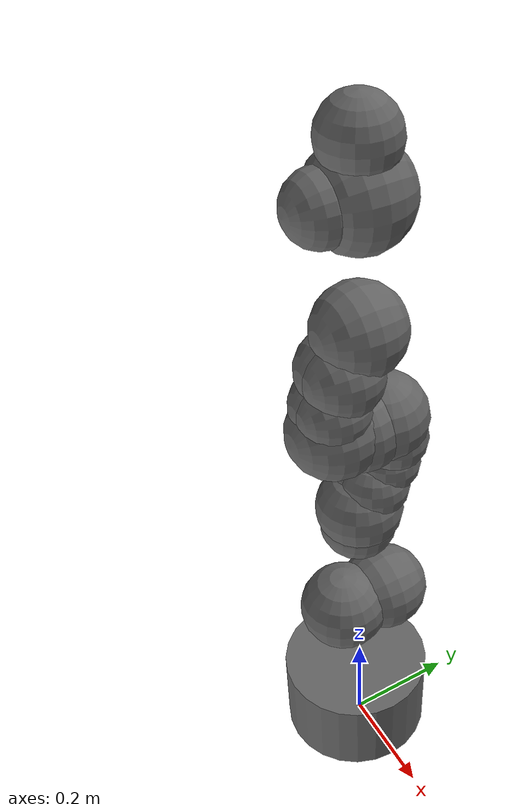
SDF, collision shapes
<?xml version="1.0" ?>
<sdf version='1.6'>
  <model name='iiwa14'>
    <link name='iiwa_link_0'>
      <pose frame=''>0 0 0 0 -0 0</pose>
      <inertial>
        <pose frame=''>-0.1 0 0.07 0 -0 0</pose>
        <mass>5</mass>
        <inertia>
          <ixx>0.05</ixx>
          <ixy>0</ixy>
          <ixz>0</ixz>
          <iyy>0.06</iyy>
          <iyz>0</iyz>
          <izz>0.03</izz>
        </inertia>
      </inertial>
      <collision name='iiwa_link_0_fixed_joint_lump__iiwa_link_0_collision'>
        <pose frame=''>-0.015 0 0.07 0 -0 0</pose>
        <geometry>
          <cylinder>
            <length>0.17</length>
            <radius>0.139</radius>
          </cylinder>
        </geometry>
        <surface>
          <contact>
            <ode/>
          </contact>
          <friction>
            <ode>
              <mu>0.2</mu>
              <mu2>0.2</mu2>
            </ode>
          </friction>
        </surface>
      </collision>
      <visual name='iiwa_link_0_fixed_joint_lump__iiwa_link_0_visual'>
        <pose frame=''>0 0 0 0 0 0</pose>
        <geometry>
          <mesh>
            <scale>1 1 1</scale>
            <uri>../meshes/visual/link_0.obj</uri>
          </mesh>
        </geometry>
        <material>
          <diffuse>0.4 0.4 0.4 1.0</diffuse>
        </material>
      </visual>
      <gravity>1</gravity>
      <velocity_decay/>
      <self_collide>0</self_collide>
    </link>

    <link name='iiwa_link_1'>
      <pose frame=''>0 0 0.1575 0 -0 0</pose>
      <inertial>
        <pose frame=''>0 -0.03 0.12 0 -0 0</pose>
        <mass>5.76</mass>
        <inertia>
          <ixx>0.033</ixx>
          <ixy>0</ixy>
          <ixz>0</ixz>
          <iyy>0.0333</iyy>
          <iyz>0</iyz>
          <izz>0.0123</izz>
        </inertia>
      </inertial>
      <collision name='iiwa_link_1_collision'>
        <pose frame=''>0 -0.033445 0.197482 0 -0 0</pose>
        <geometry>
          <sphere>
            <radius>0.079599</radius>
          </sphere>
        </geometry>
        <surface>
          <contact>
            <ode/>
          </contact>
          <friction>
            <ode>
              <mu>0.2</mu>
              <mu2>0.2</mu2>
            </ode>
          </friction>
        </surface>
      </collision>
      <visual name='iiwa_link_1_visual'>
        <pose frame=''>0 0 0 0 -0 0</pose>
        <geometry>
          <mesh>
            <scale>1 1 1</scale>
            <uri>../meshes/visual/link_1.obj</uri>
          </mesh>
        </geometry>
        <material>
          <diffuse>0.4 0.4 0.4 1.0</diffuse>
        </material>
      </visual>
      <gravity>1</gravity>
      <velocity_decay/>
      <self_collide>0</self_collide>
    </link>
    <joint name='iiwa_joint_1' type='revolute'>
      <child>iiwa_link_1</child>
      <parent>iiwa_link_0</parent>
      <axis>
        <xyz>0 0 1</xyz>
        <limit>
          <lower>-2.96706</lower>
          <upper>2.96706</upper>
          <effort>300</effort>
          <velocity>10</velocity>
        </limit>
        <dynamics>
          <damping>0.0</damping>
          <friction>0</friction>
          <spring_reference>0</spring_reference>
          <spring_stiffness>0</spring_stiffness>
        </dynamics>
        <use_parent_model_frame>1</use_parent_model_frame>
      </axis>
    </joint>
    <link name='iiwa_link_2'>
      <pose frame=''>0 0 0.36 1.5708 -0 -3.14159</pose>
      <inertial>
        <pose frame=''>0.0003 0.059 0.042 0 -0 0</pose>
        <mass>6.35</mass>
        <inertia>
          <ixx>0.0305</ixx>
          <ixy>0</ixy>
          <ixz>0</ixz>
          <iyy>0.0304</iyy>
          <iyz>0</iyz>
          <izz>0.011</izz>
        </inertia>
      </inertial>
      <collision name='iiwa_link_2_collision'>
        <pose frame=''>-0 0.203226 -0.002065 0 -0 0</pose>
        <geometry>
          <sphere>
            <radius>0.0660248</radius>
          </sphere>
        </geometry>
        <surface>
          <contact>
            <ode/>
          </contact>
          <friction>
            <ode>
              <mu>0.2</mu>
              <mu2>0.2</mu2>
            </ode>
          </friction>
        </surface>
      </collision>
      <collision name='iiwa_link_2_collision_1'>
        <pose frame=''>0 -0.003218 0.052392 0 -0 0</pose>
        <geometry>
          <sphere>
            <radius>0.079599</radius>
          </sphere>
        </geometry>
        <surface>
          <contact>
            <ode/>
          </contact>
          <friction>
            <ode>
              <mu>0.2</mu>
              <mu2>0.2</mu2>
            </ode>
          </friction>
        </surface>
      </collision>
      <visual name='iiwa_link_2_visual_grey'>
        <pose frame=''>0 0 0 0 -0 0</pose>
        <geometry>
          <mesh>
            <scale>1 1 1</scale>
            <uri>../meshes/visual/link_2_grey.obj</uri>
          </mesh>
        </geometry>
        <material>
          <diffuse>0.4 0.4 0.4 1.0</diffuse>
        </material>
      </visual>
      <visual name='iiwa_link_2_visual_orange'>
        <pose frame=''>0 0 0 0 -0 0</pose>
        <geometry>
          <mesh>
            <scale>1 1 1</scale>
            <uri>../meshes/visual/link_2_orange.obj</uri>
          </mesh>
        </geometry>
        <material>
          <diffuse>1.0 0.423529411765 0.0392156862745 1.0</diffuse>
        </material>
      </visual>
      <gravity>1</gravity>
      <velocity_decay/>
      <self_collide>0</self_collide>
    </link>
    <joint name='iiwa_joint_2' type='revolute'>
      <child>iiwa_link_2</child>
      <parent>iiwa_link_1</parent>
      <axis>
        <xyz>-0 1 0</xyz>
        <limit>
          <lower>-2.0944</lower>
          <upper>2.0944</upper>
          <effort>300</effort>
          <velocity>10</velocity>
        </limit>
        <dynamics>
          <damping>0.0</damping>
          <friction>0</friction>
          <spring_reference>0</spring_reference>
          <spring_stiffness>0</spring_stiffness>
        </dynamics>
        <use_parent_model_frame>1</use_parent_model_frame>
      </axis>
    </joint>
    <link name='iiwa_link_3'>
      <pose frame=''>0 -0 0.5645 0 0 0</pose>
      <inertial>
        <pose frame=''>0 0.03 0.13 0 -0 0</pose>
        <mass>3.5</mass>
        <inertia>
          <ixx>0.025</ixx>
          <ixy>0</ixy>
          <ixz>0</ixz>
          <iyy>0.0238</iyy>
          <iyz>0</iyz>
          <izz>0.0076</izz>
        </inertia>
      </inertial>
      <collision name='iiwa_link_3_collision'>
        <pose frame=''>0 0 0.0355 0 -0 0</pose>
        <geometry>
          <sphere>
            <radius>0.075</radius>
          </sphere>
        </geometry>
        <surface>
          <contact>
            <ode/>
          </contact>
          <friction>
            <ode>
              <mu>0.2</mu>
              <mu2>0.2</mu2>
            </ode>
          </friction>
        </surface>
      </collision>
      <collision name='iiwa_link_3_collision_1'>
        <pose frame=''>0.01 0.023 0.0855 0 -0 0</pose>
        <geometry>
          <sphere>
            <radius>0.06</radius>
          </sphere>
        </geometry>
        <surface>
          <contact>
            <ode/>
          </contact>
          <friction>
            <ode>
              <mu>0.2</mu>
              <mu2>0.2</mu2>
            </ode>
          </friction>
        </surface>
      </collision>
      <collision name='iiwa_link_3_collision_2'>
        <pose frame=''>0.01 0.048 0.1255 0 -0 0</pose>
        <geometry>
          <sphere>
            <radius>0.055</radius>
          </sphere>
        </geometry>
        <surface>
          <contact>
            <ode/>
          </contact>
          <friction>
            <ode>
              <mu>0.2</mu>
              <mu2>0.2</mu2>
            </ode>
          </friction>
        </surface>
      </collision>
      <collision name='iiwa_link_3_collision_3'>
        <pose frame=''>0.01 0.056 0.1755 0 -0 0</pose>
        <geometry>
          <sphere>
            <radius>0.06</radius>
          </sphere>
        </geometry>
        <surface>
          <contact>
            <ode/>
          </contact>
          <friction>
            <ode>
              <mu>0.2</mu>
              <mu2>0.2</mu2>
            </ode>
          </friction>
        </surface>
      </collision>
      <collision name='iiwa_link_3_collision_4'>
        <pose frame=''>-0.01 0.023 0.0855 0 -0 0</pose>
        <geometry>
          <sphere>
            <radius>0.06</radius>
          </sphere>
        </geometry>
        <surface>
          <contact>
            <ode/>
          </contact>
          <friction>
            <ode>
              <mu>0.2</mu>
              <mu2>0.2</mu2>
            </ode>
          </friction>
        </surface>
      </collision>
      <collision name='iiwa_link_3_collision_5'>
        <pose frame=''>-0.01 0.048 0.1255 0 -0 0</pose>
        <geometry>
          <sphere>
            <radius>0.055</radius>
          </sphere>
        </geometry>
        <surface>
          <contact>
            <ode/>
          </contact>
          <friction>
            <ode>
              <mu>0.2</mu>
              <mu2>0.2</mu2>
            </ode>
          </friction>
        </surface>
      </collision>
      <collision name='iiwa_link_3_collision_6'>
        <pose frame=''>-0.01 0.056 0.1755 0 -0 0</pose>
        <geometry>
          <sphere>
            <radius>0.06</radius>
          </sphere>
        </geometry>
        <surface>
          <contact>
            <ode/>
          </contact>
          <friction>
            <ode>
              <mu>0.2</mu>
              <mu2>0.2</mu2>
            </ode>
          </friction>
        </surface>
      </collision>
      <collision name='iiwa_link_3_collision_7'>
        <pose frame=''>0 0.045 0.2155 0 -0 0</pose>
        <geometry>
          <sphere>
            <radius>0.075</radius>
          </sphere>
        </geometry>
        <surface>
          <contact>
            <ode/>
          </contact>
          <friction>
            <ode>
              <mu>0.2</mu>
              <mu2>0.2</mu2>
            </ode>
          </friction>
        </surface>
      </collision>
      <collision name='iiwa_link_3_collision_8'>
        <pose frame=''>0 0 0.2155 0 -0 0</pose>
        <geometry>
          <sphere>
            <radius>0.075</radius>
          </sphere>
        </geometry>
        <surface>
          <contact>
            <ode/>
          </contact>
          <friction>
            <ode>
              <mu>0.2</mu>
              <mu2>0.2</mu2>
            </ode>
          </friction>
        </surface>
      </collision>
      <visual name='iiwa_link_3_visual'>
        <pose frame=''>0 0 0 0 -0 0</pose>
        <geometry>
          <mesh>
            <scale>1 1 1</scale>
            <uri>../meshes/visual/link_3.obj</uri>
          </mesh>
        </geometry>
        <material>
          <diffuse>0.4 0.4 0.4 1.0</diffuse>
        </material>
      </visual>
      <visual name='iiwa_link_3_visual_band'>
        <pose frame=''>0 0 0 0 -0 0</pose>
        <geometry>
          <mesh>
            <scale>1 1 1</scale>
            <uri>../meshes/visual/band.obj</uri>
          </mesh>
        </geometry>
        <material>
          <diffuse>0.6 0.6 0.6 1.0</diffuse>
        </material>
      </visual>
      <visual name='iiwa_link_3_visual_kuka'>
        <pose frame=''>0 0 0 0 -0 0</pose>
        <geometry>
          <mesh>
            <scale>1 1 1</scale>
            <uri>../meshes/visual/kuka.obj</uri>
          </mesh>
        </geometry>
        <material>
          <diffuse>0 0 0 1</diffuse>
        </material>
      </visual>
      <gravity>1</gravity>
      <velocity_decay/>
      <self_collide>0</self_collide>
    </link>
    <joint name='iiwa_joint_3' type='revolute'>
      <child>iiwa_link_3</child>
      <parent>iiwa_link_2</parent>
      <axis>
        <xyz>0 0 1</xyz>
        <limit>
          <lower>-2.96706</lower>
          <upper>2.96706</upper>
          <effort>300</effort>
          <velocity>10</velocity>
        </limit>
        <dynamics>
          <damping>0.0</damping>
          <friction>0</friction>
          <spring_reference>0</spring_reference>
          <spring_stiffness>0</spring_stiffness>
        </dynamics>
        <use_parent_model_frame>1</use_parent_model_frame>
      </axis>
    </joint>
    <link name='iiwa_link_4'>
      <pose frame=''>0 -0 0.78 1.5708 0 0</pose>
      <inertial>
        <pose frame=''>0 0.067 0.034 0 -0 0</pose>
        <mass>3.5</mass>
        <inertia>
          <ixx>0.017</ixx>
          <ixy>0</ixy>
          <ixz>0</ixz>
          <iyy>0.0164</iyy>
          <iyz>0</iyz>
          <izz>0.006</izz>
        </inertia>
      </inertial>
      <collision name='iiwa_link_4_collision'>
        <pose frame=''>0 0.01 0.046 0 -0 0</pose>
        <geometry>
          <sphere>
            <radius>0.078</radius>
          </sphere>
        </geometry>
        <surface>
          <contact>
            <ode/>
          </contact>
          <friction>
            <ode>
              <mu>0.2</mu>
              <mu2>0.2</mu2>
            </ode>
          </friction>
        </surface>
      </collision>
      <collision name='iiwa_link_4_collision_1'>
        <pose frame=''>0.01 0.06 0.052 0 -0 0</pose>
        <geometry>
          <sphere>
            <radius>0.06</radius>
          </sphere>
        </geometry>
        <surface>
          <contact>
            <ode/>
          </contact>
          <friction>
            <ode>
              <mu>0.2</mu>
              <mu2>0.2</mu2>
            </ode>
          </friction>
        </surface>
      </collision>
      <collision name='iiwa_link_4_collision_2'>
        <pose frame=''>0.01 0.12 0.034 0 -0 0</pose>
        <geometry>
          <sphere>
            <radius>0.065</radius>
          </sphere>
        </geometry>
        <surface>
          <contact>
            <ode/>
          </contact>
          <friction>
            <ode>
              <mu>0.2</mu>
              <mu2>0.2</mu2>
            </ode>
          </friction>
        </surface>
      </collision>
      <collision name='iiwa_link_4_collision_3'>
        <pose frame=''>-0.01 0.06 0.052 0 -0 0</pose>
        <geometry>
          <sphere>
            <radius>0.06</radius>
          </sphere>
        </geometry>
        <surface>
          <contact>
            <ode/>
          </contact>
          <friction>
            <ode>
              <mu>0.2</mu>
              <mu2>0.2</mu2>
            </ode>
          </friction>
        </surface>
      </collision>
      <collision name='iiwa_link_4_collision_4'>
        <pose frame=''>-0.01 0.12 0.034 0 -0 0</pose>
        <geometry>
          <sphere>
            <radius>0.065</radius>
          </sphere>
        </geometry>
        <surface>
          <contact>
            <ode/>
          </contact>
          <friction>
            <ode>
              <mu>0.2</mu>
              <mu2>0.2</mu2>
            </ode>
          </friction>
        </surface>
      </collision>
      <collision name='iiwa_link_4_collision_5'>
        <pose frame=''>0 0.184 0 0 -0 0</pose>
        <geometry>
          <sphere>
            <radius>0.075</radius>
          </sphere>
        </geometry>
        <surface>
          <contact>
            <ode/>
          </contact>
          <friction>
            <ode>
              <mu>0.2</mu>
              <mu2>0.2</mu2>
            </ode>
          </friction>
        </surface>
      </collision>
      <visual name='iiwa_link_4_visual_grey'>
        <pose frame=''>0 0 0 0 -0 0</pose>
        <geometry>
          <mesh>
            <scale>1 1 1</scale>
            <uri>../meshes/visual/link_4_grey.obj</uri>
          </mesh>
        </geometry>
        <material>
          <diffuse>0.4 0.4 0.4 1.0</diffuse>
        </material>
      </visual>
      <visual name='iiwa_link_4_visual_orange'>
        <pose frame=''>0 0 0 0 -0 0</pose>
        <geometry>
          <mesh>
            <scale>1 1 1</scale>
            <uri>../meshes/visual/link_4_orange.obj</uri>
          </mesh>
        </geometry>
        <material>
          <diffuse>1.0 0.423529411765 0.0392156862745 1.0</diffuse>
        </material>
      </visual>
      <gravity>1</gravity>
      <velocity_decay/>
      <self_collide>0</self_collide>
    </link>
    <joint name='iiwa_joint_4' type='revolute'>
      <child>iiwa_link_4</child>
      <parent>iiwa_link_3</parent>
      <axis>
        <xyz>0 -1 0</xyz>
        <limit>
          <lower>-2.0944</lower>
          <upper>2.0944</upper>
          <effort>300</effort>
          <velocity>10</velocity>
        </limit>
        <dynamics>
          <damping>0.0</damping>
          <friction>0</friction>
          <spring_reference>0</spring_reference>
          <spring_stiffness>0</spring_stiffness>
        </dynamics>
        <use_parent_model_frame>1</use_parent_model_frame>
      </axis>
    </joint>
    <link name='iiwa_link_5'>
      <pose frame=''>0 -0 0.9645 0 -0 -3.14159</pose>
      <inertial>
        <pose frame=''>0.0001 0.021 0.076 0 -0 0</pose>
        <mass>3.5</mass>
        <inertia>
          <ixx>0.01</ixx>
          <ixy>0</ixy>
          <ixz>0</ixz>
          <iyy>0.0087</iyy>
          <iyz>0</iyz>
          <izz>0.00449</izz>
        </inertia>
      </inertial>
      <visual name='iiwa_link_5_visual'>
        <pose frame=''>0 0 0 0 -0 0</pose>
        <geometry>
          <mesh>
            <scale>1 1 1</scale>
            <uri>../meshes/visual/link_5.obj</uri>
          </mesh>
        </geometry>
        <material>
          <diffuse>0.4 0.4 0.4 1.0</diffuse>
        </material>
      </visual>
      <visual name='iiwa_link_5_visual_band'>
        <pose frame=''>0 0 0 0 -0 0</pose>
        <geometry>
          <mesh>
            <scale>1 1 1</scale>
            <uri>../meshes/visual/band.obj</uri>
          </mesh>
        </geometry>
        <material>
          <diffuse>0.6 0.6 0.6 1.0</diffuse>
        </material>
      </visual>
      <visual name='iiwa_link_5_visual_kuka'>
        <pose frame=''>0 0 0 0 -0 0</pose>
        <geometry>
          <mesh>
            <scale>1 1 1</scale>
            <uri>../meshes/visual/kuka.obj</uri>
          </mesh>
        </geometry>
        <material>
          <diffuse>0 0 0 1</diffuse>
        </material>
      </visual>
      <gravity>1</gravity>
      <velocity_decay/>
      <self_collide>0</self_collide>
    </link>
    <joint name='iiwa_joint_5' type='revolute'>
      <child>iiwa_link_5</child>
      <parent>iiwa_link_4</parent>
      <axis>
        <xyz>0 0 1</xyz>
        <limit>
          <lower>-2.96706</lower>
          <upper>2.96706</upper>
          <effort>300</effort>
          <velocity>10</velocity>
        </limit>
        <dynamics>
          <damping>0.0</damping>
          <friction>0</friction>
          <spring_reference>0</spring_reference>
          <spring_stiffness>0</spring_stiffness>
        </dynamics>
        <use_parent_model_frame>1</use_parent_model_frame>
      </axis>
    </joint>
    <link name='iiwa_link_6'>
      <pose frame=''>0 0 1.18 1.5708 -0 -3.14159</pose>
      <inertial>
        <pose frame=''>0 0.0006 0.0004 0 -0 0</pose>
        <mass>1.8</mass>
        <inertia>
          <ixx>0.0049</ixx>
          <ixy>0</ixy>
          <ixz>0</ixz>
          <iyy>0.0047</iyy>
          <iyz>0</iyz>
          <izz>0.0036</izz>
        </inertia>
      </inertial>
      <collision name='iiwa_link_6_collision'>
        <pose frame=''>0 0 -0.059 0 -0 0</pose>
        <geometry>
          <sphere>
            <radius>0.055</radius>
          </sphere>
        </geometry>
        <surface>
          <contact>
            <ode/>
          </contact>
          <friction>
            <ode>
              <mu>0.2</mu>
              <mu2>0.2</mu2>
            </ode>
          </friction>
        </surface>
      </collision>
      <collision name='iiwa_link_6_collision_1'>
        <pose frame=''>0 0 0 0 -0 0</pose>
        <geometry>
          <sphere>
            <radius>0.08</radius>
          </sphere>
        </geometry>
        <surface>
          <contact>
            <ode/>
          </contact>
          <friction>
            <ode>
              <mu>0.2</mu>
              <mu2>0.2</mu2>
            </ode>
          </friction>
        </surface>
      </collision>
      <visual name='iiwa_link_6_visual_grey'>
        <pose frame=''>0 0 0 0 -0 0</pose>
        <geometry>
          <mesh>
            <scale>1 1 1</scale>
            <uri>../meshes/visual/link_6_grey.obj</uri>
          </mesh>
        </geometry>
        <material>
          <diffuse>0.4 0.4 0.4 1.0</diffuse>
        </material>
      </visual>
      <visual name='iiwa_link_6_visual_orange'>
        <pose frame=''>0 0 0 0 -0 0</pose>
        <geometry>
          <mesh>
            <scale>1 1 1</scale>
            <uri>../meshes/visual/link_6_orange.obj</uri>
          </mesh>
        </geometry>
        <material>
          <diffuse>1.0 0.423529411765 0.0392156862745 1.0</diffuse>
        </material>
      </visual>
      <gravity>1</gravity>
      <velocity_decay/>
      <self_collide>0</self_collide>
    </link>
    <joint name='iiwa_joint_6' type='revolute'>
      <child>iiwa_link_6</child>
      <parent>iiwa_link_5</parent>
      <axis>
        <xyz>-0 1 -0</xyz>
        <limit>
          <lower>-2.0944</lower>
          <upper>2.0944</upper>
          <effort>300</effort>
          <velocity>10</velocity>
        </limit>
        <dynamics>
          <damping>0.0</damping>
          <friction>0</friction>
          <spring_reference>0</spring_reference>
          <spring_stiffness>0</spring_stiffness>
        </dynamics>
        <use_parent_model_frame>1</use_parent_model_frame>
      </axis>
    </joint>
    <link name='iiwa_link_7'>
      <pose frame=''>0 0 1.261 0 0 0</pose>
      <inertial>
        <pose frame=''>0 0 0.02 0 -0 0</pose>
        <mass>1.2</mass>
        <inertia>
          <ixx>0.001</ixx>
          <ixy>0</ixy>
          <ixz>0</ixz>
          <iyy>0.001</iyy>
          <iyz>0</iyz>
          <izz>0.001</izz>
        </inertia>
      </inertial>
      <collision name='iiwa_link_7_collision'>
        <pose frame=''>0 0 0.001 0 -0 0</pose>
        <geometry>
          <sphere>
            <radius>0.06</radius>
          </sphere>
        </geometry>
        <surface>
          <contact>
            <ode/>
          </contact>
          <friction>
            <ode>
              <mu>0.2</mu>
              <mu2>0.2</mu2>
            </ode>
          </friction>
        </surface>
      </collision>
      <visual name='iiwa_link_7_visual'>
        <pose frame=''>0 0 0 0 -0 0</pose>
        <geometry>
          <mesh>
            <scale>1 1 1</scale>
            <uri>../meshes/visual/link_7.obj</uri>
          </mesh>
        </geometry>
        <material>
          <diffuse>0.4 0.4 0.4 1.0</diffuse>
        </material>
      </visual>
      <gravity>1</gravity>
      <velocity_decay/>
      <self_collide>0</self_collide>
    </link>
    <joint name='iiwa_joint_7' type='revolute'>
      <child>iiwa_link_7</child>
      <parent>iiwa_link_6</parent>
      <axis>
        <xyz>0 0 1</xyz>
        <limit>
          <lower>-3.05433</lower>
          <upper>3.05433</upper>
          <effort>300</effort>
          <velocity>10</velocity>
        </limit>
        <dynamics>
          <damping>0.0</damping>
          <friction>0</friction>
          <spring_reference>0</spring_reference>
          <spring_stiffness>0</spring_stiffness>
        </dynamics>
        <use_parent_model_frame>1</use_parent_model_frame>
      </axis>
    </joint>
    <static>0</static>
    <plugin name='gazebo_ros_controller' filename='libgazebo_ros_control.so'>
      <robotNamespace>/iiwa</robotNamespace>
    </plugin>
  </model>
</sdf>
